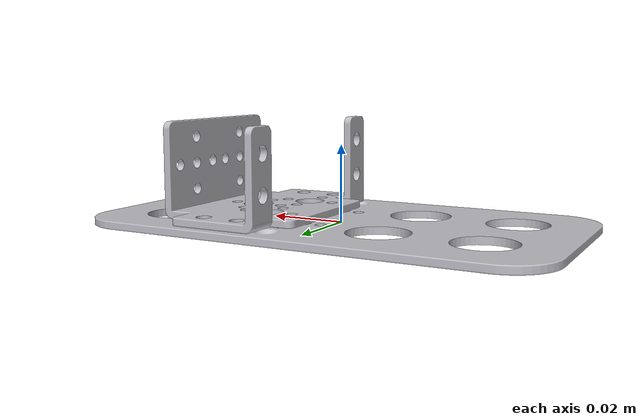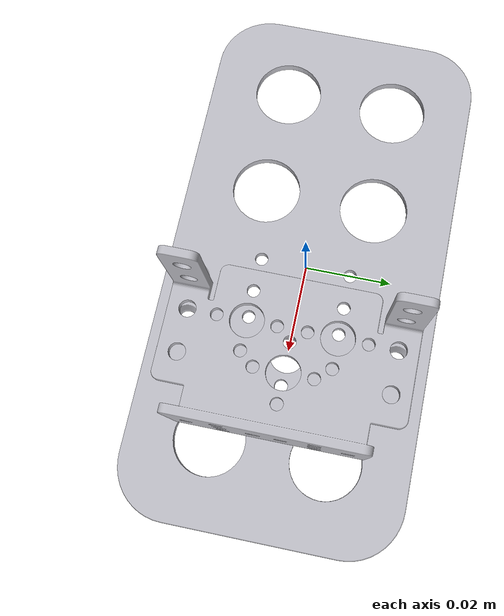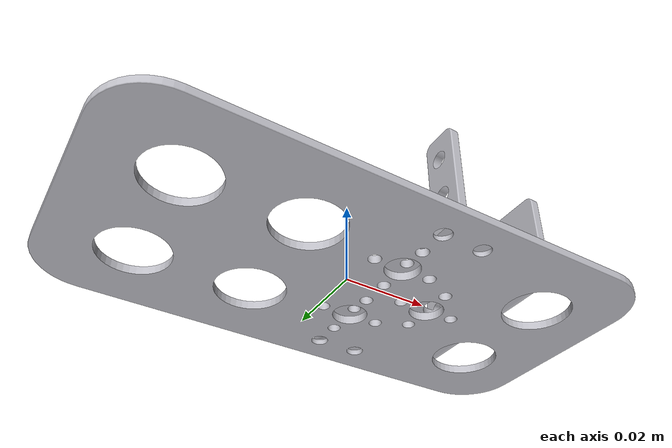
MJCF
<?xml version='1.0' encoding='utf-8'?>
<mujoco model="foot_assembly">
  <compiler angle="radian" meshdir="." autolimits="true"/>
  <visual>
    <global offwidth="1024" offheight="1024"/>
    <headlight ambient="0.55 0.55 0.55" diffuse="0.6 0.6 0.6" specular="0.2 0.2 0.2"/>
  </visual>
  <default>
    <default class="visual"><geom type="mesh" contype="0" conaffinity="0" group="2" density="0"/></default>
    <default class="collision"><geom type="mesh" group="3"/></default>
  </default>
  <asset>
    <mesh name="foot" file="大脚板/脚板支架.STL" scale="0.001 0.001 0.001"/>
    <mesh name="multi" file="多功能/多功能支架.STL" scale="0.001 0.001 0.001"/>
    <material name="bracket" rgba="0.75 0.75 0.78 1"/>
  </asset>
  <worldbody>
    <body name="foot" pos="0 0 0">
      <!-- raw foot bbox 0..123.5 x 0..63.5 x 0..2 mm -->
      <geom name="foot_visual" mesh="foot" class="visual" material="bracket" pos="-0.06175 -0.03175 -0.001"/>
      <geom name="foot_collision" mesh="foot" class="collision" pos="-0.06175 -0.03175 -0.001" density="2700"/>

      <body name="multi" pos="0.022 0 0.0135" quat="0.70710678 0 0 0.70710678">
        <!-- raw multi bbox 0..58 x 0..37 x 0..25 mm; main plate face at Z=0 rests on foot top -->
        <geom name="multi_visual" mesh="multi" class="visual" material="bracket" pos="-0.029 -0.0185 -0.0125"/>
        <geom name="multi_collision" mesh="multi" class="collision" pos="-0.029 -0.0185 -0.0125" density="2700"/>
      </body>
    </body>
  </worldbody>
</mujoco>
